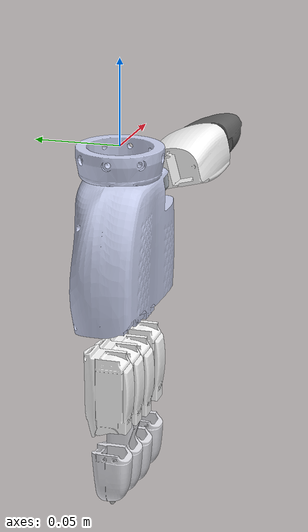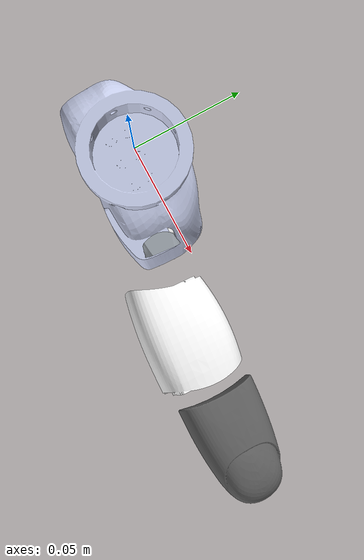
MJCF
<mujoco model="xhand_left">
  <compiler angle="radian" meshdir="./meshes/"/>

  <asset>
    <mesh name="left_hand_link" file="left_hand_link.STL"/>
    <mesh name="left_hand_ee_link" file="left_hand_ee_link.STL"/>
    <mesh name="left_hand_thumb_bend_link" file="left_hand_thumb_bend_link.STL"/>
    <mesh name="left_hand_thumb_rota_link1" file="left_hand_thumb_rota_link1.STL"/>
    <mesh name="left_hand_thumb_rota_link2" file="left_hand_thumb_rota_link2.STL"/>
    <mesh name="left_hand_thumb_rota_tip" file="left_hand_thumb_rota_tip.STL"/>
    <mesh name="left_hand_index_bend_link" file="left_hand_index_bend_link.STL"/>
    <mesh name="left_hand_index_rota_link1" file="left_hand_index_rota_link1.STL"/>
    <mesh name="left_hand_index_rota_link2" file="left_hand_index_rota_link2.STL"/>
    <mesh name="left_hand_index_rota_tip" file="left_hand_index_rota_tip.STL"/>
    <mesh name="left_hand_mid_link1" file="left_hand_mid_link1.STL"/>
    <mesh name="left_hand_mid_link2" file="left_hand_mid_link2.STL"/>
    <mesh name="left_hand_mid_tip" file="left_hand_mid_tip.STL"/>
    <mesh name="left_hand_ring_link1" file="left_hand_ring_link1.STL"/>
    <mesh name="left_hand_ring_link2" file="left_hand_ring_link2.STL"/>
    <mesh name="left_hand_ring_tip" file="left_hand_ring_tip.STL"/>
    <mesh name="left_hand_pinky_link1" file="left_hand_pinky_link1.STL"/>
    <mesh name="left_hand_pinky_link2" file="left_hand_pinky_link2.STL"/>
    <mesh name="left_hand_pinky_tip" file="left_hand_pinky_tip.STL"/>
  </asset>

  <worldbody>
    <geom type="mesh" contype="0" conaffinity="0" group="1" density="0" rgba="0.792157 0.819608 0.933333 1" mesh="left_hand_link"/>
    <geom type="mesh" rgba="0.792157 0.819608 0.933333 1" mesh="left_hand_link"/>
    <geom pos="0 0 -0.065" quat="1 0 0 0" type="mesh" contype="0" conaffinity="0" group="1" density="0" rgba="0.698039 0.698039 0.698039 1" mesh="left_hand_ee_link"/>
    <geom pos="0 0 -0.065" quat="1 0 0 0" type="mesh" rgba="0.698039 0.698039 0.698039 1" mesh="left_hand_ee_link"/>
    <body name="left_hand_thumb_bend_link" pos="0.0228 -0.0095 -0.0305">
      <inertial pos="0.0146951 0.00101706 0.000731323" quat="0.992393 -0.0973709 0.0612459 -0.0438671" mass="0.00988789" diaginertia="3.62054e-07 2.30437e-07 2.08786e-07"/>
      <joint name="left_hand_thumb_bend_joint" pos="0 0 0" axis="0 0 -1" range="0 1.83" actuatorfrcrange="-1.1 1.1" damping="1" frictionloss="1"/>
      <geom type="mesh" contype="0" conaffinity="0" group="1" density="0" rgba="0.615686 0.643137 0.67451 1" mesh="left_hand_thumb_bend_link"/>
      <body name="left_hand_thumb_rota_link1" pos="0.0285986 -0.00831766 0.00177996" quat="0.99124 -0.130499 0.00265604 -0.0201746">
        <inertial pos="0.028791 -0.000242916 0.00247392" quat="0.217829 0.653076 -0.217073 0.692042" mass="0.153155" diaginertia="3.52828e-05 2.86923e-05 2.73828e-05"/>
        <joint name="left_hand_thumb_rota_joint1" pos="0 0 0" axis="0 1 0" range="-1.05 1.57" actuatorfrcrange="-1.1 1.1" damping="1" frictionloss="1"/>
        <geom type="mesh" contype="0" conaffinity="0" group="1" density="0" rgba="1 1 1 1" mesh="left_hand_thumb_rota_link1"/>
        <geom type="mesh" rgba="1 1 1 1" mesh="left_hand_thumb_rota_link1"/>
        <body name="left_hand_thumb_rota_link2" pos="0.0553 0 0">
          <inertial pos="0.0246456 2.69138e-05 0.00357064" quat="0.00187299 0.759205 0.00176869 0.650847" mass="0.0374006" diaginertia="8.09648e-06 6.84881e-06 3.82956e-06"/>
          <joint name="left_hand_thumb_rota_joint2" pos="0 0 0" axis="0 1 0" range="-0.17 1.83" actuatorfrcrange="-0.4 0.4" damping="1" frictionloss="1"/>
          <geom type="mesh" contype="0" conaffinity="0" group="1" density="0" rgba="0.384314 0.384314 0.384314 1" mesh="left_hand_thumb_rota_link2"/>
          <geom type="mesh" rgba="0.384314 0.384314 0.384314 1" mesh="left_hand_thumb_rota_link2"/>
          <geom pos="0.0504025 0 0" quat="1 0 0 0" type="mesh" contype="0" conaffinity="0" group="1" density="0" rgba="0.698039 0.698039 0.698039 1" mesh="left_hand_thumb_rota_tip"/>
          <geom pos="0.0504025 0 0" quat="1 0 0 0" type="mesh" rgba="0.698039 0.698039 0.698039 1" mesh="left_hand_thumb_rota_tip"/>
        </body>
      </body>
    </body>
    <body name="left_hand_index_bend_link" pos="0.0265 -0.0065 -0.0899">
      <inertial pos="-1.36538e-05 -0.000296873 0.00896969" quat="0.997151 0.0753904 0.00111959 -0.00217774" mass="0.0678358" diaginertia="1.2458e-05 1.17987e-05 3.93143e-06"/>
      <joint name="left_hand_index_bend_joint" pos="0 0 0" axis="0 -1 0" range="-0.175 0.175" actuatorfrcrange="-0.4 0.4" damping="1" frictionloss="1"/>
      <geom type="mesh" contype="0" conaffinity="0" group="1" density="0" rgba="1 1 1 1" mesh="left_hand_index_bend_link"/>
      <body name="left_hand_index_rota_link1" pos="0 0 -0.0178">
        <inertial pos="-1.33093e-05 0.00117935 -0.0314668" quat="0.999972 -0.00501877 0.0036222 0.00411164" mass="0.0630023" diaginertia="1.27462e-05 1.13166e-05 3.96726e-06"/>
        <joint name="left_hand_index_joint1" pos="0 0 0" axis="-1 0 0" range="0 1.92" actuatorfrcrange="-1.1 1.1" damping="1" frictionloss="1"/>
        <geom type="mesh" contype="0" conaffinity="0" group="1" density="0" rgba="1 1 1 1" mesh="left_hand_index_rota_link1"/>
        <geom type="mesh" rgba="1 1 1 1" mesh="left_hand_index_rota_link1"/>
        <body name="left_hand_index_rota_link2" pos="0 0 -0.0558">
          <inertial pos="0.000105985 0.000552346 -0.0269534" quat="0.999776 -0.00709054 0.0176373 0.00935454" mass="0.0179783" diaginertia="1.57535e-06 1.41212e-06 9.24998e-07"/>
          <joint name="left_hand_index_joint2" pos="0 0 0" axis="-1 0 0" range="0 1.92" actuatorfrcrange="-0.4 0.4" damping="1" frictionloss="1"/>
          <geom type="mesh" contype="0" conaffinity="0" group="1" density="0" rgba="0.866667 0.866667 0.890196 1" mesh="left_hand_index_rota_link2"/>
          <geom type="mesh" rgba="0.866667 0.866667 0.890196 1" mesh="left_hand_index_rota_link2"/>
          <geom pos="0 0 -0.0425" quat="1 0 0 0" type="mesh" contype="0" conaffinity="0" group="1" density="0" rgba="0.698039 0.698039 0.698039 1" mesh="left_hand_index_rota_tip"/>
          <geom pos="0 0 -0.0425" quat="1 0 0 0" type="mesh" rgba="0.698039 0.698039 0.698039 1" mesh="left_hand_index_rota_tip"/>
        </body>
      </body>
    </body>
    <body name="left_hand_mid_link1" pos="0.004 -0.0065 -0.1082">
      <inertial pos="-1.33093e-05 0.00117935 -0.0314668" quat="0.999972 -0.00501877 0.00362222 0.00411166" mass="0.0630023" diaginertia="1.27462e-05 1.13166e-05 3.96726e-06"/>
      <joint name="left_hand_mid_joint1" pos="0 0 0" axis="-1 0 0" range="0 1.92" actuatorfrcrange="-1.1 1.1" damping="1" frictionloss="1"/>
      <geom type="mesh" contype="0" conaffinity="0" group="1" density="0" rgba="1 1 1 1" mesh="left_hand_mid_link1"/>
      <geom type="mesh" rgba="1 1 1 1" mesh="left_hand_mid_link1"/>
      <body name="left_hand_mid_link2" pos="0 0 -0.0558">
        <inertial pos="0.000105985 0.000552346 -0.0269534" quat="0.999776 -0.00709054 0.0176373 0.00935454" mass="0.0179783" diaginertia="1.57535e-06 1.41212e-06 9.24998e-07"/>
        <joint name="left_hand_mid_joint2" pos="0 0 0" axis="-1 0 0" range="0 1.92" actuatorfrcrange="-0.4 0.4" damping="1" frictionloss="1"/>
        <geom type="mesh" contype="0" conaffinity="0" group="1" density="0" rgba="0.866667 0.866667 0.890196 1" mesh="left_hand_mid_link2"/>
        <geom type="mesh" rgba="0.866667 0.866667 0.890196 1" mesh="left_hand_mid_link2"/>
        <geom pos="0 0 -0.0425" quat="1 0 0 0" type="mesh" contype="0" conaffinity="0" group="1" density="0" rgba="0.698039 0.698039 0.698039 1" mesh="left_hand_mid_tip"/>
        <geom pos="0 0 -0.0425" quat="1 0 0 0" type="mesh" rgba="0.698039 0.698039 0.698039 1" mesh="left_hand_mid_tip"/>
      </body>
    </body>
    <body name="left_hand_ring_link1" pos="-0.016 -0.0065 -0.1052">
      <inertial pos="-1.33096e-05 0.00117935 -0.0314668" quat="0.999972 -0.00501874 0.00362221 0.00411173" mass="0.0630023" diaginertia="1.27462e-05 1.13166e-05 3.96726e-06"/>
      <joint name="left_hand_ring_joint1" pos="0 0 0" axis="-1 0 0" range="0 1.92" actuatorfrcrange="-1.1 1.1" damping="1" frictionloss="1"/>
      <geom type="mesh" contype="0" conaffinity="0" group="1" density="0" rgba="1 1 1 1" mesh="left_hand_ring_link1"/>
      <geom type="mesh" rgba="1 1 1 1" mesh="left_hand_ring_link1"/>
      <body name="left_hand_ring_link2" pos="0 0 -0.0558">
        <inertial pos="0.000105985 0.000552346 -0.0269534" quat="0.999776 -0.00709054 0.0176373 0.00935454" mass="0.0179783" diaginertia="1.57535e-06 1.41212e-06 9.24998e-07"/>
        <joint name="left_hand_ring_joint2" pos="0 0 0" axis="-1 0 0" range="0 1.92" actuatorfrcrange="-0.4 0.4" damping="1" frictionloss="1"/>
        <geom type="mesh" contype="0" conaffinity="0" group="1" density="0" rgba="0.866667 0.866667 0.890196 1" mesh="left_hand_ring_link2"/>
        <geom type="mesh" rgba="0.866667 0.866667 0.890196 1" mesh="left_hand_ring_link2"/>
        <geom pos="0 0 -0.0425" quat="1 0 0 0" type="mesh" contype="0" conaffinity="0" group="1" density="0" rgba="0.698039 0.698039 0.698039 1" mesh="left_hand_ring_tip"/>
        <geom pos="0 0 -0.0425" quat="1 0 0 0" type="mesh" rgba="0.698039 0.698039 0.698039 1" mesh="left_hand_ring_tip"/>
      </body>
    </body>
    <body name="left_hand_pinky_link1" pos="-0.036 -0.0065 -0.1022">
      <inertial pos="-1.33097e-05 0.00117935 -0.0314668" quat="0.999972 -0.00501872 0.0036222 0.00411174" mass="0.0630023" diaginertia="1.27462e-05 1.13166e-05 3.96726e-06"/>
      <joint name="left_hand_pinky_joint1" pos="0 0 0" axis="-1 0 0" range="0 1.92" actuatorfrcrange="-1.1 1.1" damping="1" frictionloss="1"/>
      <geom type="mesh" contype="0" conaffinity="0" group="1" density="0" rgba="1 1 1 1" mesh="left_hand_pinky_link1"/>
      <geom type="mesh" rgba="1 1 1 1" mesh="left_hand_pinky_link1"/>
      <body name="left_hand_pinky_link2" pos="0 0 -0.0558">
        <inertial pos="0.000105985 0.000552346 -0.0269534" quat="0.999776 -0.00709054 0.0176373 0.00935454" mass="0.0179783" diaginertia="1.57535e-06 1.41212e-06 9.24998e-07"/>
        <joint name="left_hand_pinky_joint2" pos="0 0 0" axis="-1 0 0" range="0 1.92" actuatorfrcrange="-0.4 0.4" damping="1" frictionloss="1"/>
        <geom type="mesh" contype="0" conaffinity="0" group="1" density="0" rgba="0.866667 0.866667 0.890196 1" mesh="left_hand_pinky_link2"/>
        <geom type="mesh" rgba="0.866667 0.866667 0.890196 1" mesh="left_hand_pinky_link2"/>
        <geom pos="0 0 -0.0425" quat="1 0 0 0" type="mesh" contype="0" conaffinity="0" group="1" density="0" rgba="0.698039 0.698039 0.698039 1" mesh="left_hand_pinky_tip"/>
        <geom pos="0 0 -0.0425" quat="1 0 0 0" type="mesh" rgba="0.698039 0.698039 0.698039 1" mesh="left_hand_pinky_tip"/>
      </body>
    </body>
  </worldbody>
</mujoco>
